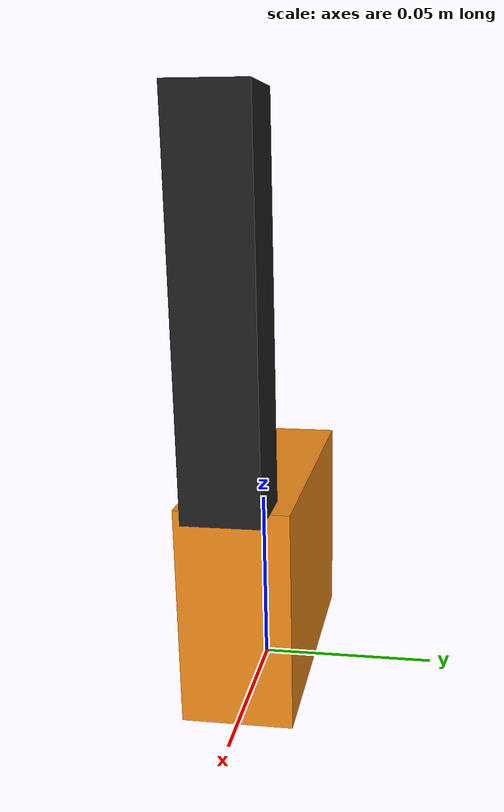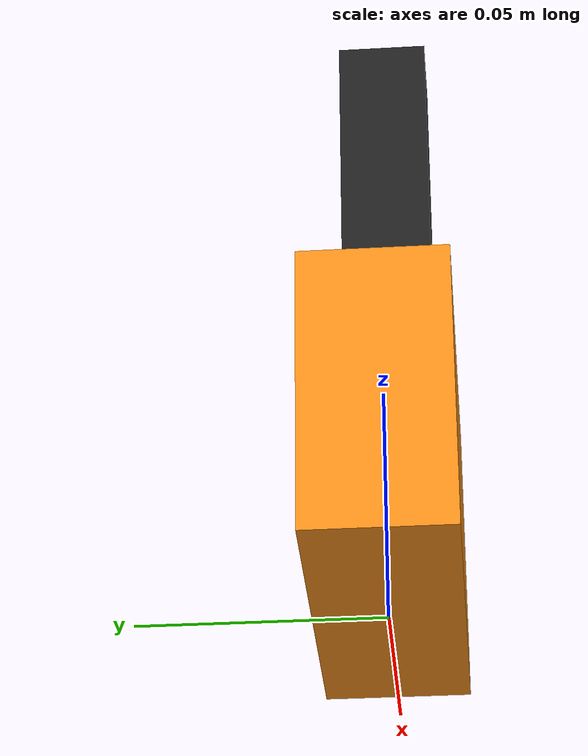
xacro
<?xml version="1.0"?>
<robot name="test_joint" xmlns:xacro="http://www.ros.org/wiki/xacro">

  <xacro:property name="PI" value="3.1415926535897931"/>

  <xacro:property name="base_width" value="0.08" />
  <xacro:property name="base_height" value="0.06" />
  <xacro:property name="base_depth" value="0.03" />
  <xacro:property name="gripper_width" value="0.02" />
  <xacro:property name="gripper_height" value="0.1" />

  <!-- Import Rviz colors -->
  <xacro:include filename="$(find dynamixel_ros_control)/tests/materials.xacro" />

  <!-- Base Link -->
  <link name="link_base">
    <collision>
      <origin xyz="0 0 ${base_height/2}" rpy="0 0 0"/>
      <geometry>
	      <box size="${base_width} ${base_depth} ${base_height}"/>
      </geometry>
    </collision>

    <visual>
      <origin xyz="0 0 ${base_height/2}" rpy="0 0 0"/>
      <geometry>
	      <box size="${base_width} ${base_depth} ${base_height}"/>
      </geometry>
      <material name="orange"/>
    </visual>
  </link>

  <joint name="joint1" type="revolute">
    <parent link="link_base"/>
    <child link="link1"/>
    <origin xyz="${base_width/2} 0 ${base_height}" rpy="0 0 0"/>
    <axis xyz="0 1 0"/>
    <limit lower="-0.35" upper="${PI/2}" effort="1" velocity="1" />
  </joint>

  <!-- Middle Link -->
  <link name="link1">
    <collision>
      <origin xyz="0 0 ${gripper_height/2}" rpy="0 0 0"/>
      <geometry>
	      <box size="${gripper_width} ${gripper_width} ${gripper_height}"/>
      </geometry>
    </collision>

    <visual>
      <origin xyz="0 0 ${gripper_height/2}" rpy="0 0 0"/>
      <geometry>
        <box size="${gripper_width} ${gripper_width} ${gripper_height}"/>
      </geometry>
      <material name="black"/>
    </visual>
  </link>

  <transmission name="tran1">
    <type>transmission_interface/SimpleTransmission</type>
    <joint name="joint1">
      <hardwareInterface>hardware_interface/EffortJointInterface</hardwareInterface>
    </joint>
    <actuator name="motor1">
      <hardwareInterface>hardware_interface/EffortJointInterface</hardwareInterface>
      <mechanicalReduction>1</mechanicalReduction>
    </actuator>
  </transmission>

</robot>
